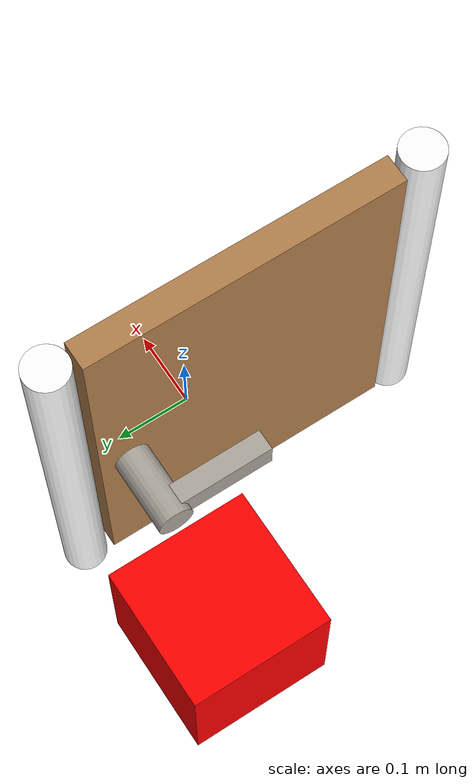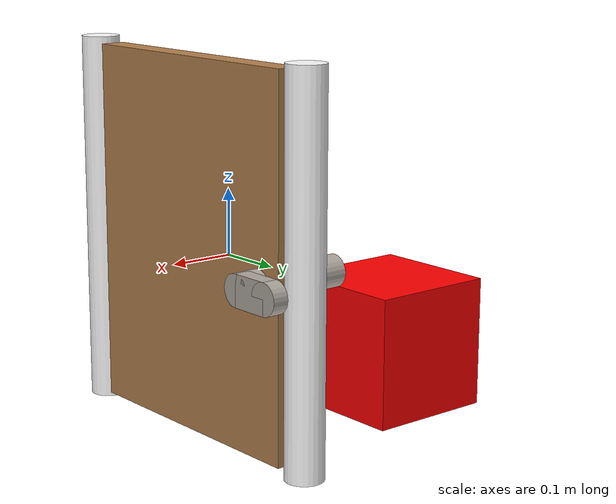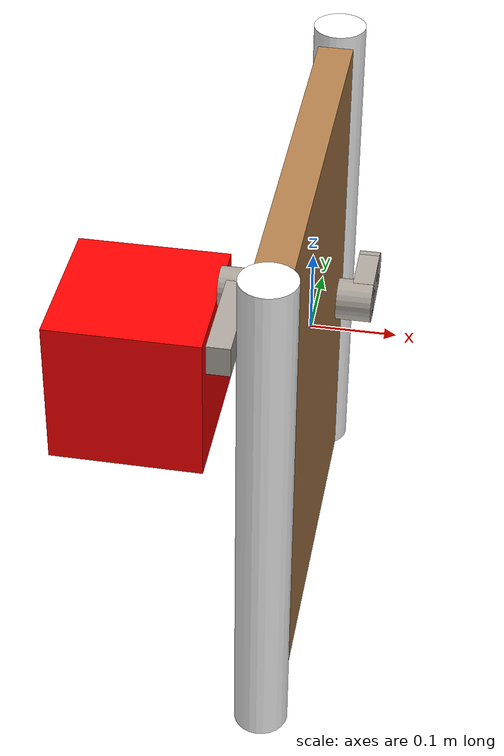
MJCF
<?xml version="1.0" encoding="utf-8"?>
<!-- from https://github.com/vikashplus/mj_envs/tree/master/mj_envs/hand_manipulation_suite/assets -->
<!-- Information about door can be found in this paper: https://arxiv.org/pdf/1709.10087.pdf -->

<mujoco model="door_lock">
  <asset>
    <texture file="../textures/light-wood.png" type="cube" name="light-wood" />
    <texture file="../textures/wall-12-scandinavia-TEX.png" type="cube" name="dark-wood" />
    <texture file="../textures/brass-ambra.png" type="cube" name="metal" />
    <material name="MatMetal" texture="metal" specular="1" shininess="0.3" rgba="0.9 0.9 0.9 1" />
    <material name="MatDarkWood" texture="dark-wood" texrepeat="3 3" specular="0.4" shininess="0.1" />
    <material name="MatLightWood" texture="light-wood" texrepeat="3 3" specular="0.4" shininess="0.1" />
  </asset>
    <worldbody>
      <body>
        <body name="object">
          <body name="frame" pos="0 0.22 0" quat="0.707388 0 0 -0.706825">
              <inertial pos="0.3 0 0" quat="0.5 0.5 0.5 0.5" mass="7.85398" diaginertia="0.923301 0.764585 0.168533" />
              <geom size="0.03 0.3" pos="0.555 0 0" type="cylinder" rgba="1 1 1 1" group="0" name="r_frame"/>
              <geom size="0.03 0.3" pos="0.045 0 0" type="cylinder" rgba="1 1 1 1" group="0" name="l_frame"/>
              <body name="door" pos="0.3 0 0" >
                  <inertial pos="0.0296816 -0.00152345 0" quat="0.701072 0 0 0.713091" mass="2.43455" diaginertia="0.0913751 0.0521615 0.043714" />
                  <joint name="hinge" pos="0.255 0 0" axis="0 0 1" range="0.0 0.4" damping="1" frictionloss="1" limited="true"/>
                  <geom size="0.22 0.02 .29" type="box" friction="1 1 1" group="0" name="panel" material="MatDarkWood"/>
                  <body name="latch" pos="-0.175 0 -0.025">
                      <inertial pos="-0.017762 0.0138544 0" quat="0.365653 0.605347 -0.36522 0.605365" mass="0.1" diaginertia="0.0483771 0.0410001 0.0111013" />
                      <joint name="latch_joint" pos="0 0 0" axis="0 1 0" range="-1.57 1.57" frictionloss="0.1" damping="0" limited="true" springref="0" stiffness="1" />
                      <geom fromto="0 0.0625 0 0 -0.125 0" size="0.025" type="cylinder" group="0" name="handle_base" material="MatMetal"/>
                      <geom size="0.075 0.015 0.02" pos="0.075 -0.10 0" type="box" group="0" name="handle" material="MatMetal"/>
                      <geom size="0.025 0.0125 0.03125" pos="-0.03125 0.05 0" quat="0.707388 0 0.706825 0" type="box" group="0" name="latch" material="MatMetal"/>
                      <geom size="0.025 0.0125" pos="-0.0625 0.05 0" quat="0.707388 0.706825 0 0" type="cylinder" group="0" name="latch_tip" material="MatMetal"/>
                      <!-- Don't render the door handle site by default -->
                      <site name="handle" pos="0.125 -0.10 0" size="0.02" rgba="0 0 1 0" />
                  </body>
              </body>
          </body>

        <body name="red_cube" pos="-0.23 0.1 -0.15">
          <joint name="cube_joint" type="slide" axis="0 1 0"/>
          <geom type="box" size=".1 .1 .1" friction=".33" group="1" rgba="1 0 0 1"/>
          <inertial pos="0.3 0 0" quat="0.5 0.5 0.5 0.5" mass="7.85398" diaginertia="0.923301 0.764585 0.168533" />
        </body>

        </body>
        <site name="bottom_site" pos="0 0 -0.3" rgba="0 0 0 0" size="0.005"/>
        <site name="top_site" pos="0 0 0.3" rgba="0 0 0 0" size="0.005"/>
        <site name="horizontal_radius_site" pos="0.3 0 0" rgba="0 0 0 0" size="0.1"/>
      </body>
    </worldbody>
</mujoco>
